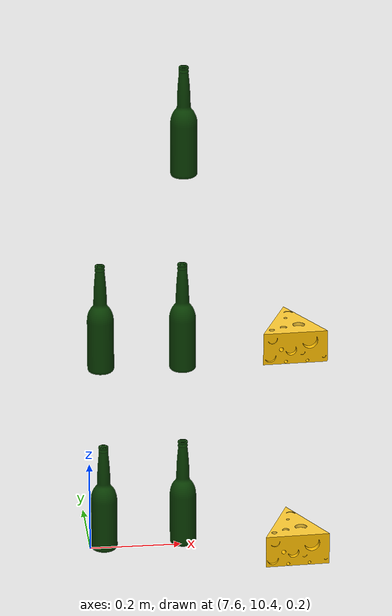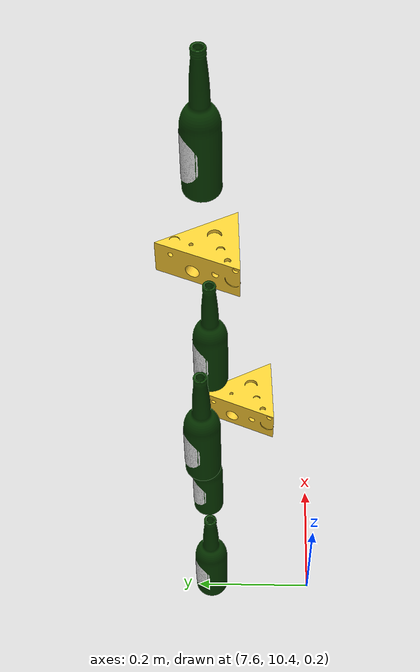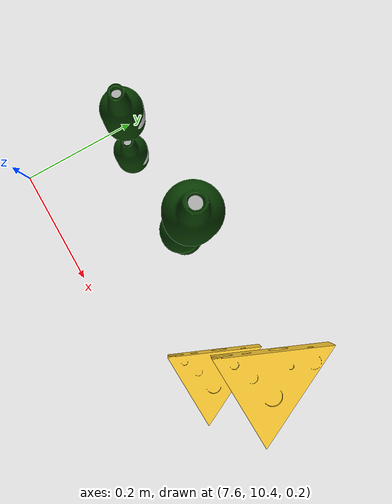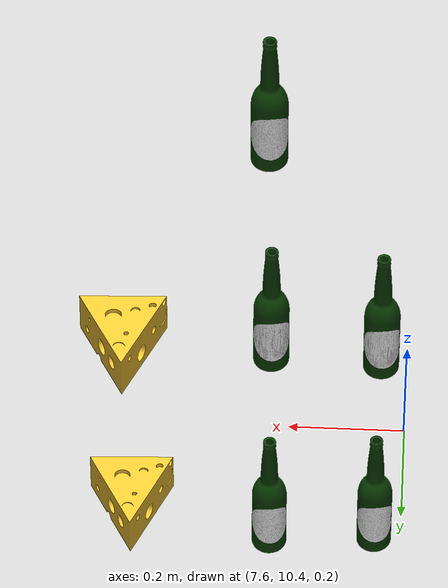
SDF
<sdf version="1.6">
 <world name="default">
  <model name="beer_clone">
   <link name="link_5">
    <inertial>
     <mass>1</mass>
     <inertia>
      <ixx>0.166667</ixx>
      <ixy>0</ixy>
      <ixz>0</ixz>
      <iyy>0.166667</iyy>
      <iyz>0</iyz>
      <izz>0.166667</izz>
     </inertia>
    </inertial>
    <pose>2e-06 -2e-06 0 0 -0 0</pose>
    <visual name="visual">
     <geometry><mesh><uri>model://beer/meshes/beer.dae</uri><scale>0.02 0.02 0.02</scale></mesh></geometry>
    </visual>
    <collision name="collision">
     <geometry><mesh><uri>model://beer/meshes/beer.dae</uri><scale>0.02 0.02 0.02</scale></mesh></geometry>
     <surface>
      <friction>
       <ode><mu>1</mu><mu2>1</mu2><fdir1>0 0 0</fdir1><slip1>0</slip1><slip2>0</slip2></ode>
       <torsional>
        <coefficient>1</coefficient>
        <patch_radius>0</patch_radius>
        <surface_radius>0</surface_radius>
        <use_patch_radius>1</use_patch_radius>
        <ode><slip>0</slip></ode>
       </torsional>
      </friction>
      <bounce><restitution_coefficient>0</restitution_coefficient><threshold>1e+06</threshold></bounce>
      <contact>
       <collide_without_contact>0</collide_without_contact>
       <collide_without_contact_bitmask>1</collide_without_contact_bitmask>
       <collide_bitmask>1</collide_bitmask>
       <ode>
        <soft_cfm>0</soft_cfm>
        <soft_erp>0.2</soft_erp>
        <kp>1e+13</kp>
        <kd>1</kd>
        <max_vel>0.01</max_vel>
        <min_depth>0</min_depth>
       </ode>
       <bullet>
        <split_impulse>1</split_impulse>
        <split_impulse_penetration_threshold>-0.01</split_impulse_penetration_threshold>
        <soft_cfm>0</soft_cfm>
        <soft_erp>0.2</soft_erp>
        <kp>1e+13</kp>
        <kd>1</kd>
       </bullet>
      </contact>
     </surface>
    </collision>
   </link>
   <static>1</static>
   <pose>7.64205 10.5883 0.11809 0 -0 3.09779</pose>
  </model>
  <model name="beer_clone_0">
   <link name="link_5">
    <inertial>
     <mass>1</mass>
     <inertia>
      <ixx>0.166667</ixx>
      <ixy>0</ixy>
      <ixz>0</ixz>
      <iyy>0.166667</iyy>
      <iyz>0</iyz>
      <izz>0.166667</izz>
     </inertia>
    </inertial>
    <pose>2e-06 -2e-06 0 0 -0 0</pose>
    <visual name="visual">
     <geometry><mesh><uri>model://beer/meshes/beer.dae</uri><scale>0.02 0.02 0.02</scale></mesh></geometry>
    </visual>
    <collision name="collision">
     <geometry><mesh><uri>model://beer/meshes/beer.dae</uri><scale>0.02 0.02 0.02</scale></mesh></geometry>
     <surface>
      <friction>
       <ode><mu>1</mu><mu2>1</mu2><fdir1>0 0 0</fdir1><slip1>0</slip1><slip2>0</slip2></ode>
       <torsional>
        <coefficient>1</coefficient>
        <patch_radius>0</patch_radius>
        <surface_radius>0</surface_radius>
        <use_patch_radius>1</use_patch_radius>
        <ode><slip>0</slip></ode>
       </torsional>
      </friction>
      <bounce><restitution_coefficient>0</restitution_coefficient><threshold>1e+06</threshold></bounce>
      <contact>
       <collide_without_contact>0</collide_without_contact>
       <collide_without_contact_bitmask>1</collide_without_contact_bitmask>
       <collide_bitmask>1</collide_bitmask>
       <ode>
        <soft_cfm>0</soft_cfm>
        <soft_erp>0.2</soft_erp>
        <kp>1e+13</kp>
        <kd>1</kd>
        <max_vel>0.01</max_vel>
        <min_depth>0</min_depth>
       </ode>
       <bullet>
        <split_impulse>1</split_impulse>
        <split_impulse_penetration_threshold>-0.01</split_impulse_penetration_threshold>
        <soft_cfm>0</soft_cfm>
        <soft_erp>0.2</soft_erp>
        <kp>1e+13</kp>
        <kd>1</kd>
       </bullet>
      </contact>
     </surface>
    </collision>
   </link>
   <static>1</static>
   <pose>7.82348 10.596 0.995664 0 -0 3.09779</pose>
  </model>
  <model name="beer_clone_0_clone">
   <link name="link_5">
    <inertial>
     <mass>1</mass>
     <inertia>
      <ixx>0.166667</ixx>
      <ixy>0</ixy>
      <ixz>0</ixz>
      <iyy>0.166667</iyy>
      <iyz>0</iyz>
      <izz>0.166667</izz>
     </inertia>
    </inertial>
    <pose>2e-06 -2e-06 0 0 -0 0</pose>
    <visual name="visual">
     <geometry><mesh><uri>model://beer/meshes/beer.dae</uri><scale>0.02 0.02 0.02</scale></mesh></geometry>
    </visual>
    <collision name="collision">
     <geometry><mesh><uri>model://beer/meshes/beer.dae</uri><scale>0.02 0.02 0.02</scale></mesh></geometry>
     <surface>
      <friction>
       <ode><mu>1</mu><mu2>1</mu2><fdir1>0 0 0</fdir1><slip1>0</slip1><slip2>0</slip2></ode>
       <torsional>
        <coefficient>1</coefficient>
        <patch_radius>0</patch_radius>
        <surface_radius>0</surface_radius>
        <use_patch_radius>1</use_patch_radius>
        <ode><slip>0</slip></ode>
       </torsional>
      </friction>
      <bounce><restitution_coefficient>0</restitution_coefficient><threshold>1e+06</threshold></bounce>
      <contact>
       <collide_without_contact>0</collide_without_contact>
       <collide_without_contact_bitmask>1</collide_without_contact_bitmask>
       <collide_bitmask>1</collide_bitmask>
       <ode>
        <soft_cfm>0</soft_cfm>
        <soft_erp>0.2</soft_erp>
        <kp>1e+13</kp>
        <kd>1</kd>
        <max_vel>0.01</max_vel>
        <min_depth>0</min_depth>
       </ode>
       <bullet>
        <split_impulse>1</split_impulse>
        <split_impulse_penetration_threshold>-0.01</split_impulse_penetration_threshold>
        <soft_cfm>0</soft_cfm>
        <soft_erp>0.2</soft_erp>
        <kp>1e+13</kp>
        <kd>1</kd>
       </bullet>
      </contact>
     </surface>
    </collision>
   </link>
   <static>1</static>
   <pose>7.82024 10.6007 0.11809 0 -0 3.09779</pose>
  </model>
  <model name="beer_clone_0_clone_0">
   <link name="link_5">
    <inertial>
     <mass>1</mass>
     <inertia>
      <ixx>0.166667</ixx>
      <ixy>0</ixy>
      <ixz>0</ixz>
      <iyy>0.166667</iyy>
      <iyz>0</iyz>
      <izz>0.166667</izz>
     </inertia>
    </inertial>
    <pose>2e-06 -2e-06 0 0 -0 0</pose>
    <visual name="visual">
     <geometry><mesh><uri>model://beer/meshes/beer.dae</uri><scale>0.02 0.02 0.02</scale></mesh></geometry>
    </visual>
    <collision name="collision">
     <geometry><mesh><uri>model://beer/meshes/beer.dae</uri><scale>0.02 0.02 0.02</scale></mesh></geometry>
     <surface>
      <friction>
       <ode><mu>1</mu><mu2>1</mu2><fdir1>0 0 0</fdir1><slip1>0</slip1><slip2>0</slip2></ode>
       <torsional>
        <coefficient>1</coefficient>
        <patch_radius>0</patch_radius>
        <surface_radius>0</surface_radius>
        <use_patch_radius>1</use_patch_radius>
        <ode><slip>0</slip></ode>
       </torsional>
      </friction>
      <bounce><restitution_coefficient>0</restitution_coefficient><threshold>1e+06</threshold></bounce>
      <contact>
       <collide_without_contact>0</collide_without_contact>
       <collide_without_contact_bitmask>1</collide_without_contact_bitmask>
       <collide_bitmask>1</collide_bitmask>
       <ode>
        <soft_cfm>0</soft_cfm>
        <soft_erp>0.2</soft_erp>
        <kp>1e+13</kp>
        <kd>1</kd>
        <max_vel>0.01</max_vel>
        <min_depth>0</min_depth>
       </ode>
       <bullet>
        <split_impulse>1</split_impulse>
        <split_impulse_penetration_threshold>-0.01</split_impulse_penetration_threshold>
        <soft_cfm>0</soft_cfm>
        <soft_erp>0.2</soft_erp>
        <kp>1e+13</kp>
        <kd>1</kd>
       </bullet>
      </contact>
     </surface>
    </collision>
   </link>
   <static>1</static>
   <pose>7.63875 10.5965 0.54551 0 -0 3.09779</pose>
  </model>
  <model name="beer_clone_0_clone_2">
   <link name="link_5">
    <inertial>
     <mass>1</mass>
     <inertia>
      <ixx>0.166667</ixx>
      <ixy>0</ixy>
      <ixz>0</ixz>
      <iyy>0.166667</iyy>
      <iyz>0</iyz>
      <izz>0.166667</izz>
     </inertia>
    </inertial>
    <pose>2e-06 -2e-06 0 0 -0 0</pose>
    <visual name="visual">
     <geometry><mesh><uri>model://beer/meshes/beer.dae</uri><scale>0.02 0.02 0.02</scale></mesh></geometry>
    </visual>
    <collision name="collision">
     <geometry><mesh><uri>model://beer/meshes/beer.dae</uri><scale>0.02 0.02 0.02</scale></mesh></geometry>
     <surface>
      <friction>
       <ode><mu>1</mu><mu2>1</mu2><fdir1>0 0 0</fdir1><slip1>0</slip1><slip2>0</slip2></ode>
       <torsional>
        <coefficient>1</coefficient>
        <patch_radius>0</patch_radius>
        <surface_radius>0</surface_radius>
        <use_patch_radius>1</use_patch_radius>
        <ode><slip>0</slip></ode>
       </torsional>
      </friction>
      <bounce><restitution_coefficient>0</restitution_coefficient><threshold>1e+06</threshold></bounce>
      <contact>
       <collide_without_contact>0</collide_without_contact>
       <collide_without_contact_bitmask>1</collide_without_contact_bitmask>
       <collide_bitmask>1</collide_bitmask>
       <ode>
        <soft_cfm>0</soft_cfm>
        <soft_erp>0.2</soft_erp>
        <kp>1e+13</kp>
        <kd>1</kd>
        <max_vel>0.01</max_vel>
        <min_depth>0</min_depth>
       </ode>
       <bullet>
        <split_impulse>1</split_impulse>
        <split_impulse_penetration_threshold>-0.01</split_impulse_penetration_threshold>
        <soft_cfm>0</soft_cfm>
        <soft_erp>0.2</soft_erp>
        <kp>1e+13</kp>
        <kd>1</kd>
       </bullet>
      </contact>
     </surface>
    </collision>
   </link>
   <static>1</static>
   <pose>7.81901 10.5893 0.54551 0 -0 3.09779</pose>
  </model>
  <model name="cheese_clone_1">
   <link name="link_6">
    <inertial>
     <mass>1</mass>
     <inertia>
      <ixx>0.166667</ixx>
      <ixy>0</ixy>
      <ixz>0</ixz>
      <iyy>0.166667</iyy>
      <iyz>0</iyz>
      <izz>0.166667</izz>
     </inertia>
    </inertial>
    <pose>3e-06 -3e-06 0 0 -0 0</pose>
    <visual name="visual">
     <geometry><mesh><uri>model://cheese/meshes/cheese.dae</uri><scale>0.02 0.02 0.02</scale></mesh></geometry>
    </visual>
    <collision name="collision">
     <geometry><mesh><uri>model://cheese/meshes/cheese.dae</uri><scale>0.02 0.02 0.02</scale></mesh></geometry>
     <surface>
      <friction>
       <ode><mu>1</mu><mu2>1</mu2><fdir1>0 0 0</fdir1><slip1>0</slip1><slip2>0</slip2></ode>
       <torsional>
        <coefficient>1</coefficient>
        <patch_radius>0</patch_radius>
        <surface_radius>0</surface_radius>
        <use_patch_radius>1</use_patch_radius>
        <ode><slip>0</slip></ode>
       </torsional>
      </friction>
      <bounce><restitution_coefficient>0</restitution_coefficient><threshold>1e+06</threshold></bounce>
      <contact>
       <collide_without_contact>0</collide_without_contact>
       <collide_without_contact_bitmask>1</collide_without_contact_bitmask>
       <collide_bitmask>1</collide_bitmask>
       <ode>
        <soft_cfm>0</soft_cfm>
        <soft_erp>0.2</soft_erp>
        <kp>1e+13</kp>
        <kd>1</kd>
        <max_vel>0.01</max_vel>
        <min_depth>0</min_depth>
       </ode>
       <bullet>
        <split_impulse>1</split_impulse>
        <split_impulse_penetration_threshold>-0.01</split_impulse_penetration_threshold>
        <soft_cfm>0</soft_cfm>
        <soft_erp>0.2</soft_erp>
        <kp>1e+13</kp>
        <kd>1</kd>
       </bullet>
      </contact>
     </surface>
    </collision>
   </link>
   <static>1</static>
   <pose>8.07476 10.5276 0.104835 0 -0 1.617</pose>
  </model>
  <model name="cheese_clone_4">
   <link name="link_6">
    <inertial>
     <mass>1</mass>
     <inertia>
      <ixx>0.166667</ixx>
      <ixy>0</ixy>
      <ixz>0</ixz>
      <iyy>0.166667</iyy>
      <iyz>0</iyz>
      <izz>0.166667</izz>
     </inertia>
    </inertial>
    <pose>3e-06 -3e-06 0 0 -0 0</pose>
    <visual name="visual">
     <geometry><mesh><uri>model://cheese/meshes/cheese.dae</uri><scale>0.02 0.02 0.02</scale></mesh></geometry>
    </visual>
    <collision name="collision">
     <geometry><mesh><uri>model://cheese/meshes/cheese.dae</uri><scale>0.02 0.02 0.02</scale></mesh></geometry>
     <surface>
      <friction>
       <ode><mu>1</mu><mu2>1</mu2><fdir1>0 0 0</fdir1><slip1>0</slip1><slip2>0</slip2></ode>
       <torsional>
        <coefficient>1</coefficient>
        <patch_radius>0</patch_radius>
        <surface_radius>0</surface_radius>
        <use_patch_radius>1</use_patch_radius>
        <ode><slip>0</slip></ode>
       </torsional>
      </friction>
      <bounce><restitution_coefficient>0</restitution_coefficient><threshold>1e+06</threshold></bounce>
      <contact>
       <collide_without_contact>0</collide_without_contact>
       <collide_without_contact_bitmask>1</collide_without_contact_bitmask>
       <collide_bitmask>1</collide_bitmask>
       <ode>
        <soft_cfm>0</soft_cfm>
        <soft_erp>0.2</soft_erp>
        <kp>1e+13</kp>
        <kd>1</kd>
        <max_vel>0.01</max_vel>
        <min_depth>0</min_depth>
       </ode>
       <bullet>
        <split_impulse>1</split_impulse>
        <split_impulse_penetration_threshold>-0.01</split_impulse_penetration_threshold>
        <soft_cfm>0</soft_cfm>
        <soft_erp>0.2</soft_erp>
        <kp>1e+13</kp>
        <kd>1</kd>
       </bullet>
      </contact>
     </surface>
    </collision>
   </link>
   <static>1</static>
   <pose>8.07519 10.6 0.561894 0 -0 1.617</pose>
  </model>
 </world>
</sdf>
